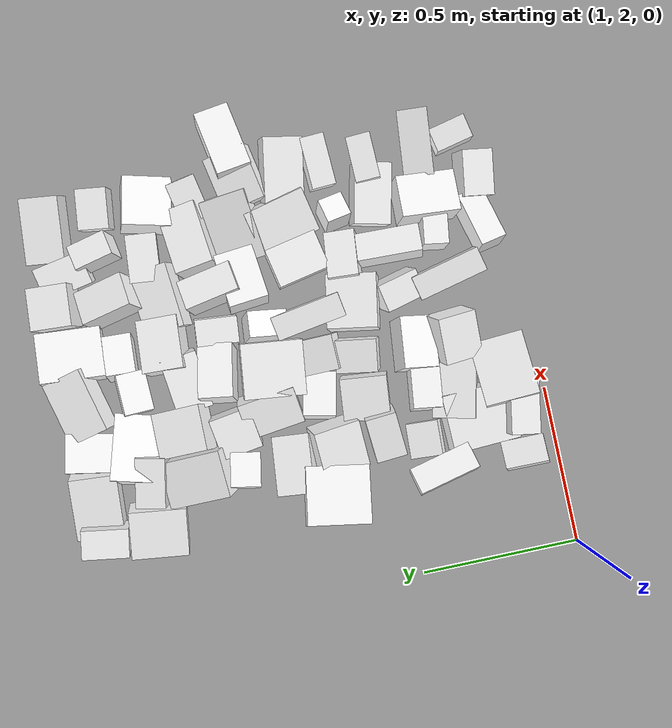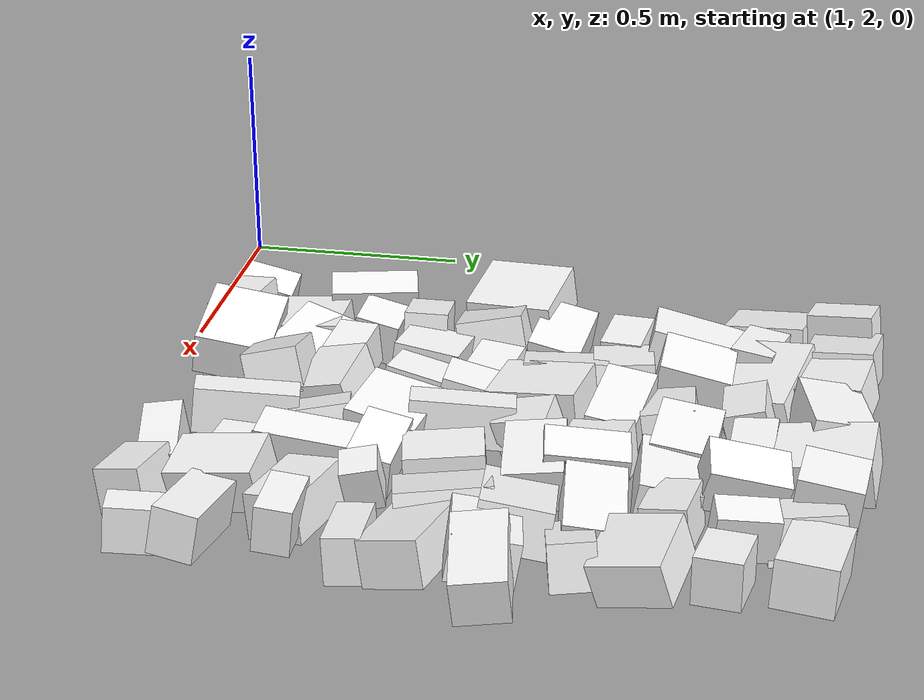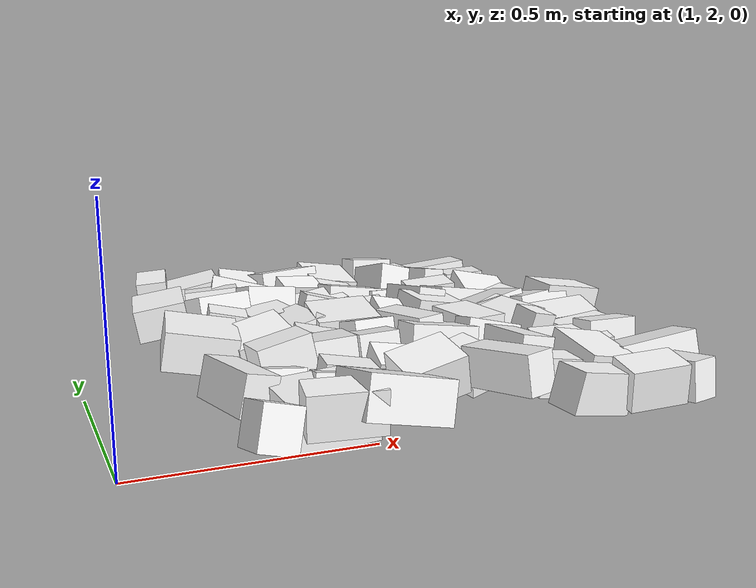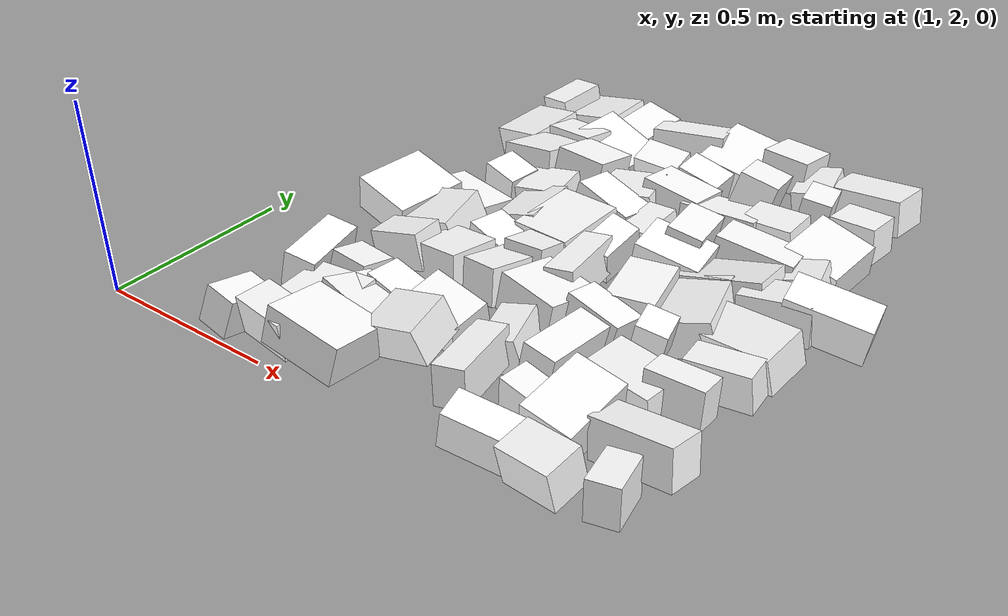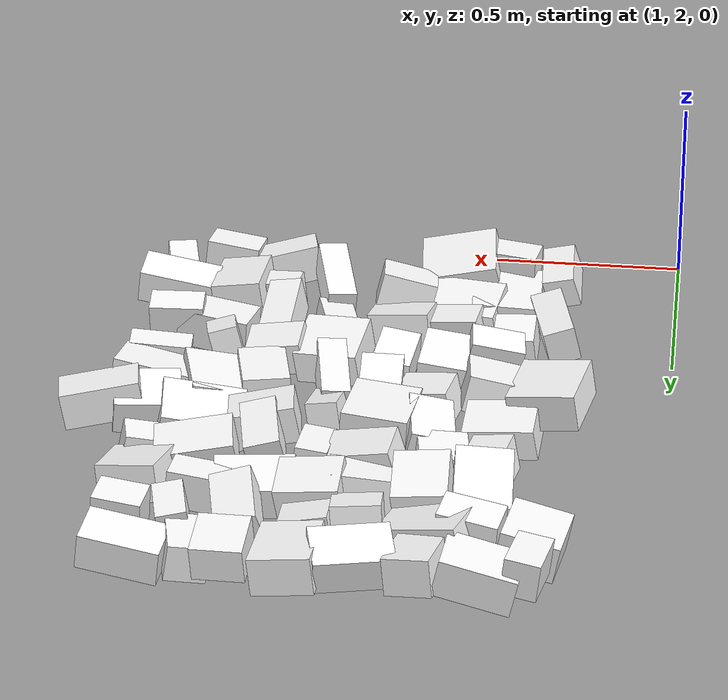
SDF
<sdf version="1.7">
 <world name="default">
  <include><uri>model://sun</uri></include>
  <model name="static_environment">
   <static>true</static>
   <link name="region_602">
    <pose>1.3143529930830047 2.10798580426209 0.02496733199336092 -0.23788961958568355 0.23706101029361798 -0.026906328376021527</pose>
    <collision name="region_602_collision">
     <geometry><box><size>0.086723894463434 0.1339021619477204 0.1</size></box></geometry>
     <surface><friction><ode><mu>1.0</mu><mu2>1.0</mu2></ode></friction></surface>
    </collision>
    <visual name="region_602_visual">
     <geometry><box><size>0.086723894463434 0.1339021619477204 0.1</size></box></geometry>
     <material><ambient>1.0 1.0 1.0 1.0</ambient><diffuse>1.0 1.0 1.0 1.0</diffuse></material>
    </visual>
   </link>
   <link name="region_603">
    <pose>1.4645937225971548 2.097411394733201 0.04912402909399399 0.09038301964085677 -0.01752523511364318 -0.16919919212234452</pose>
    <collision name="region_603_collision">
     <geometry><box><size>0.16918472586889083 0.0926132143927425 0.1</size></box></geometry>
     <surface><friction><ode><mu>1.0</mu><mu2>1.0</mu2></ode></friction></surface>
    </collision>
    <visual name="region_603_visual">
     <geometry><box><size>0.16918472586889083 0.0926132143927425 0.1</size></box></geometry>
     <material><ambient>1.0 1.0 1.0 1.0</ambient><diffuse>1.0 1.0 1.0 1.0</diffuse></material>
    </visual>
   </link>
   <link name="region_604">
    <pose>1.587092569384673 2.123796823683361 0.04971246547814872 -0.17374251782879535 0.2014244224064407 0.03436584116499031</pose>
    <collision name="region_604_collision">
     <geometry><box><size>0.2029740576088566 0.16855377845805458 0.1</size></box></geometry>
     <surface><friction><ode><mu>1.0</mu><mu2>1.0</mu2></ode></friction></surface>
    </collision>
    <visual name="region_604_visual">
     <geometry><box><size>0.2029740576088566 0.16855377845805458 0.1</size></box></geometry>
     <material><ambient>1.0 1.0 1.0 1.0</ambient><diffuse>1.0 1.0 1.0 1.0</diffuse></material>
    </visual>
   </link>
   <link name="region_607">
    <pose>2.0695237140863014 2.096034040735279 0.015921465502781656 0.095740891409206 0.19202154855508013 0.21500186572130858</pose>
    <collision name="region_607_collision">
     <geometry><box><size>0.17749332622786237 0.08345738807720982 0.1</size></box></geometry>
     <surface><friction><ode><mu>1.0</mu><mu2>1.0</mu2></ode></friction></surface>
    </collision>
    <visual name="region_607_visual">
     <geometry><box><size>0.17749332622786237 0.08345738807720982 0.1</size></box></geometry>
     <material><ambient>1.0 1.0 1.0 1.0</ambient><diffuse>1.0 1.0 1.0 1.0</diffuse></material>
    </visual>
   </link>
   <link name="region_608">
    <pose>2.2174133554037008 2.0843425345050828 0.022183066573756134 0.15995687303231632 -0.07999695536176094 -0.1370175415728488</pose>
    <collision name="region_608_collision">
     <geometry><box><size>0.14453122709304111 0.09867787945108614 0.1</size></box></geometry>
     <surface><friction><ode><mu>1.0</mu><mu2>1.0</mu2></ode></friction></surface>
    </collision>
    <visual name="region_608_visual">
     <geometry><box><size>0.14453122709304111 0.09867787945108614 0.1</size></box></geometry>
     <material><ambient>1.0 1.0 1.0 1.0</ambient><diffuse>1.0 1.0 1.0 1.0</diffuse></material>
    </visual>
   </link>
   <link name="region_609">
    <pose>2.35659515418664 2.1286541226583027 0.0035398292321165703 -0.09171750222686942 -0.023258259265477255 0.2113139224327858</pose>
    <collision name="region_609_collision">
     <geometry><box><size>0.0765642604869572 0.11956382684275133 0.1</size></box></geometry>
     <surface><friction><ode><mu>1.0</mu><mu2>1.0</mu2></ode></friction></surface>
    </collision>
    <visual name="region_609_visual">
     <geometry><box><size>0.0765642604869572 0.11956382684275133 0.1</size></box></geometry>
     <material><ambient>1.0 1.0 1.0 1.0</ambient><diffuse>1.0 1.0 1.0 1.0</diffuse></material>
    </visual>
   </link>
   <link name="region_623">
    <pose>1.4600234426269774 2.2277964300716584 0.005274058077741267 0.04518145309298838 -0.06167250563846677 0.03802367119254807</pose>
    <collision name="region_623_collision">
     <geometry><box><size>0.18674985992699442 0.21653331803329728 0.1</size></box></geometry>
     <surface><friction><ode><mu>1.0</mu><mu2>1.0</mu2></ode></friction></surface>
    </collision>
    <visual name="region_623_visual">
     <geometry><box><size>0.18674985992699442 0.21653331803329728 0.1</size></box></geometry>
     <material><ambient>1.0 1.0 1.0 1.0</ambient><diffuse>1.0 1.0 1.0 1.0</diffuse></material>
    </visual>
   </link>
   <link name="region_624">
    <pose>1.5703644933242225 2.2788946518633217 0.011345727443911258 -0.22921941343310626 0.0675936499980957 -0.23348834809650226</pose>
    <collision name="region_624_collision">
     <geometry><box><size>0.21236594375697418 0.13424560840203897 0.1</size></box></geometry>
     <surface><friction><ode><mu>1.0</mu><mu2>1.0</mu2></ode></friction></surface>
    </collision>
    <visual name="region_624_visual">
     <geometry><box><size>0.21236594375697418 0.13424560840203897 0.1</size></box></geometry>
     <material><ambient>1.0 1.0 1.0 1.0</ambient><diffuse>1.0 1.0 1.0 1.0</diffuse></material>
    </visual>
   </link>
   <link name="region_625">
    <pose>1.7283618011784903 2.255405741614464 0.0499754252169395 0.23150983075776183 -0.2384701267287327 0.014936623894739431</pose>
    <collision name="region_625_collision">
     <geometry><box><size>0.14828915977501894 0.1256152336093527 0.1</size></box></geometry>
     <surface><friction><ode><mu>1.0</mu><mu2>1.0</mu2></ode></friction></surface>
    </collision>
    <visual name="region_625_visual">
     <geometry><box><size>0.14828915977501894 0.1256152336093527 0.1</size></box></geometry>
     <material><ambient>1.0 1.0 1.0 1.0</ambient><diffuse>1.0 1.0 1.0 1.0</diffuse></material>
    </visual>
   </link>
   <link name="region_626">
    <pose>1.9233811798272384 2.232397662406858 0.04546616709158715 -0.11582847557283044 -0.06994923179833806 0.24037190409286402</pose>
    <collision name="region_626_collision">
     <geometry><box><size>0.07717132412795666 0.22243913095050838 0.1</size></box></geometry>
     <surface><friction><ode><mu>1.0</mu><mu2>1.0</mu2></ode></friction></surface>
    </collision>
    <visual name="region_626_visual">
     <geometry><box><size>0.07717132412795666 0.22243913095050838 0.1</size></box></geometry>
     <material><ambient>1.0 1.0 1.0 1.0</ambient><diffuse>1.0 1.0 1.0 1.0</diffuse></material>
    </visual>
   </link>
   <link name="region_627">
    <pose>2.0667821774352033 2.244846880296875 0.009673656145635486 0.03573477229511368 0.10537960164643917 -0.15665633704739396</pose>
    <collision name="region_627_collision">
     <geometry><box><size>0.10335498510022983 0.07912936034270254 0.1</size></box></geometry>
     <surface><friction><ode><mu>1.0</mu><mu2>1.0</mu2></ode></friction></surface>
    </collision>
    <visual name="region_627_visual">
     <geometry><box><size>0.10335498510022983 0.07912936034270254 0.1</size></box></geometry>
     <material><ambient>1.0 1.0 1.0 1.0</ambient><diffuse>1.0 1.0 1.0 1.0</diffuse></material>
    </visual>
   </link>
   <link name="region_628">
    <pose>2.1746676131185723 2.2519778101091217 0.02750059011983226 0.1356110483469991 0.15929310447262873 -0.04012678356468602</pose>
    <collision name="region_628_collision">
     <geometry><box><size>0.13334763889579823 0.1891318839042098 0.1</size></box></geometry>
     <surface><friction><ode><mu>1.0</mu><mu2>1.0</mu2></ode></friction></surface>
    </collision>
    <visual name="region_628_visual">
     <geometry><box><size>0.13334763889579823 0.1891318839042098 0.1</size></box></geometry>
     <material><ambient>1.0 1.0 1.0 1.0</ambient><diffuse>1.0 1.0 1.0 1.0</diffuse></material>
    </visual>
   </link>
   <link name="region_629">
    <pose>2.350671750558049 2.244659696027526 0.026897671674542337 -0.15021741841432784 -0.1387005551535065 -0.0753169357927555</pose>
    <collision name="region_629_collision">
     <geometry><box><size>0.2087821261390897 0.09527432023995436 0.1</size></box></geometry>
     <surface><friction><ode><mu>1.0</mu><mu2>1.0</mu2></ode></friction></surface>
    </collision>
    <visual name="region_629_visual">
     <geometry><box><size>0.2087821261390897 0.09527432023995436 0.1</size></box></geometry>
     <material><ambient>1.0 1.0 1.0 1.0</ambient><diffuse>1.0 1.0 1.0 1.0</diffuse></material>
    </visual>
   </link>
   <link name="region_642">
    <pose>1.3174664044132984 2.3725804348523267 0.03244933965234272 -0.003039795011237967 0.23032373334636874 0.23483845224082944</pose>
    <collision name="region_642_collision">
     <geometry><box><size>0.08515876372812148 0.20066687292897822 0.1</size></box></geometry>
     <surface><friction><ode><mu>1.0</mu><mu2>1.0</mu2></ode></friction></surface>
    </collision>
    <visual name="region_642_visual">
     <geometry><box><size>0.08515876372812148 0.20066687292897822 0.1</size></box></geometry>
     <material><ambient>1.0 1.0 1.0 1.0</ambient><diffuse>1.0 1.0 1.0 1.0</diffuse></material>
    </visual>
   </link>
   <link name="region_643">
    <pose>1.42077324003048 2.4071686409813373 0.0038961210840954444 -0.22424612089459717 0.07293676148431916 -0.05029556373433813</pose>
    <collision name="region_643_collision">
     <geometry><box><size>0.11067459371309829 0.10157407020688614 0.1</size></box></geometry>
     <surface><friction><ode><mu>1.0</mu><mu2>1.0</mu2></ode></friction></surface>
    </collision>
    <visual name="region_643_visual">
     <geometry><box><size>0.11067459371309829 0.10157407020688614 0.1</size></box></geometry>
     <material><ambient>1.0 1.0 1.0 1.0</ambient><diffuse>1.0 1.0 1.0 1.0</diffuse></material>
    </visual>
   </link>
   <link name="region_644">
    <pose>1.585266996235787 2.3765225379726918 0.010154423140943659 0.012806156578442585 0.15798803355348695 -0.14073606140338257</pose>
    <collision name="region_644_collision">
     <geometry><box><size>0.14411451406173525 0.09307348839362574 0.1</size></box></geometry>
     <surface><friction><ode><mu>1.0</mu><mu2>1.0</mu2></ode></friction></surface>
    </collision>
    <visual name="region_644_visual">
     <geometry><box><size>0.14411451406173525 0.09307348839362574 0.1</size></box></geometry>
     <material><ambient>1.0 1.0 1.0 1.0</ambient><diffuse>1.0 1.0 1.0 1.0</diffuse></material>
    </visual>
   </link>
   <link name="region_645">
    <pose>1.7269369695472547 2.3804817218383976 0.01407113426145622 0.2427966067166903 0.13512546164591172 -0.12033005948299336</pose>
    <collision name="region_645_collision">
     <geometry><box><size>0.1651872669137714 0.1141411296268407 0.1</size></box></geometry>
     <surface><friction><ode><mu>1.0</mu><mu2>1.0</mu2></ode></friction></surface>
    </collision>
    <visual name="region_645_visual">
     <geometry><box><size>0.1651872669137714 0.1141411296268407 0.1</size></box></geometry>
     <material><ambient>1.0 1.0 1.0 1.0</ambient><diffuse>1.0 1.0 1.0 1.0</diffuse></material>
    </visual>
   </link>
   <link name="region_646">
    <pose>1.9082073095073921 2.394887787088176 0.01175133476950111 0.12339919459653786 -0.20544335097657573 0.21720625447581654</pose>
    <collision name="region_646_collision">
     <geometry><box><size>0.09001982028151964 0.13358799579513947 0.1</size></box></geometry>
     <surface><friction><ode><mu>1.0</mu><mu2>1.0</mu2></ode></friction></surface>
    </collision>
    <visual name="region_646_visual">
     <geometry><box><size>0.09001982028151964 0.13358799579513947 0.1</size></box></geometry>
     <material><ambient>1.0 1.0 1.0 1.0</ambient><diffuse>1.0 1.0 1.0 1.0</diffuse></material>
    </visual>
   </link>
   <link name="region_647">
    <pose>2.048772132888746 2.4040651178079 0.03422124570360553 -0.08794632622545062 0.16351725450456117 -0.05338631998854776</pose>
    <collision name="region_647_collision">
     <geometry><box><size>0.08709115709806353 0.21614166682891814 0.1</size></box></geometry>
     <surface><friction><ode><mu>1.0</mu><mu2>1.0</mu2></ode></friction></surface>
    </collision>
    <visual name="region_647_visual">
     <geometry><box><size>0.08709115709806353 0.21614166682891814 0.1</size></box></geometry>
     <material><ambient>1.0 1.0 1.0 1.0</ambient><diffuse>1.0 1.0 1.0 1.0</diffuse></material>
    </visual>
   </link>
   <link name="region_648">
    <pose>2.2228908336440423 2.4180756621457054 0.01078647115048741 0.11317626796271246 -0.04050861062842126 -0.2200087810113882</pose>
    <collision name="region_648_collision">
     <geometry><box><size>0.19466537238057519 0.11813605146870075 0.1</size></box></geometry>
     <surface><friction><ode><mu>1.0</mu><mu2>1.0</mu2></ode></friction></surface>
    </collision>
    <visual name="region_648_visual">
     <geometry><box><size>0.19466537238057519 0.11813605146870075 0.1</size></box></geometry>
     <material><ambient>1.0 1.0 1.0 1.0</ambient><diffuse>1.0 1.0 1.0 1.0</diffuse></material>
    </visual>
   </link>
   <link name="region_649">
    <pose>2.331909031631252 2.4187543520339214 0.038962711543759285 -0.11137660495114554 0.006415821342074468 0.025836209355691697</pose>
    <collision name="region_649_collision">
     <geometry><box><size>0.1448756599503218 0.07742169342774953 0.1</size></box></geometry>
     <surface><friction><ode><mu>1.0</mu><mu2>1.0</mu2></ode></friction></surface>
    </collision>
    <visual name="region_649_visual">
     <geometry><box><size>0.1448756599503218 0.07742169342774953 0.1</size></box></geometry>
     <material><ambient>1.0 1.0 1.0 1.0</ambient><diffuse>1.0 1.0 1.0 1.0</diffuse></material>
    </visual>
   </link>
   <link name="region_663">
    <pose>1.4696052407768527 2.534544782767726 0.04232349508911307 -0.032987733629840976 -0.208707993830949 0.08378166645857194</pose>
    <collision name="region_663_collision">
     <geometry><box><size>0.14310180446693474 0.09788475142690135 0.1</size></box></geometry>
     <surface><friction><ode><mu>1.0</mu><mu2>1.0</mu2></ode></friction></surface>
    </collision>
    <visual name="region_663_visual">
     <geometry><box><size>0.14310180446693474 0.09788475142690135 0.1</size></box></geometry>
     <material><ambient>1.0 1.0 1.0 1.0</ambient><diffuse>1.0 1.0 1.0 1.0</diffuse></material>
    </visual>
   </link>
   <link name="region_664">
    <pose>1.5950414348366588 2.5681954384393584 0.02559978951803677 -0.1171173845227817 -0.08456585321787402 -0.09006968437760532</pose>
    <collision name="region_664_collision">
     <geometry><box><size>0.136256660732518 0.14735986445211582 0.1</size></box></geometry>
     <surface><friction><ode><mu>1.0</mu><mu2>1.0</mu2></ode></friction></surface>
    </collision>
    <visual name="region_664_visual">
     <geometry><box><size>0.136256660732518 0.14735986445211582 0.1</size></box></geometry>
     <material><ambient>1.0 1.0 1.0 1.0</ambient><diffuse>1.0 1.0 1.0 1.0</diffuse></material>
    </visual>
   </link>
   <link name="region_665">
    <pose>1.730510681396158 2.565255428287132 0.02690682398958938 -0.1678461733137775 -0.08460996980515484 -0.14149700012071087</pose>
    <collision name="region_665_collision">
     <geometry><box><size>0.10386604887862368 0.13109493573133418 0.1</size></box></geometry>
     <surface><friction><ode><mu>1.0</mu><mu2>1.0</mu2></ode></friction></surface>
    </collision>
    <visual name="region_665_visual">
     <geometry><box><size>0.10386604887862368 0.13109493573133418 0.1</size></box></geometry>
     <material><ambient>1.0 1.0 1.0 1.0</ambient><diffuse>1.0 1.0 1.0 1.0</diffuse></material>
    </visual>
   </link>
   <link name="region_666">
    <pose>1.896415927758869 2.5456465840006075 0.03445310274407008 -0.1575869815936991 0.08996931444552764 -0.18276394051536965</pose>
    <collision name="region_666_collision">
     <geometry><box><size>0.17262391614225991 0.15989523985767373 0.1</size></box></geometry>
     <surface><friction><ode><mu>1.0</mu><mu2>1.0</mu2></ode></friction></surface>
    </collision>
    <visual name="region_666_visual">
     <geometry><box><size>0.17262391614225991 0.15989523985767373 0.1</size></box></geometry>
     <material><ambient>1.0 1.0 1.0 1.0</ambient><diffuse>1.0 1.0 1.0 1.0</diffuse></material>
    </visual>
   </link>
   <link name="region_667">
    <pose>2.042819648653981 2.5458389221278654 0.029452910217971036 -0.17875710460485617 0.20783169068785529 -0.11137265509208405</pose>
    <collision name="region_667_collision">
     <geometry><box><size>0.14888321037254232 0.09784136209261589 0.1</size></box></geometry>
     <surface><friction><ode><mu>1.0</mu><mu2>1.0</mu2></ode></friction></surface>
    </collision>
    <visual name="region_667_visual">
     <geometry><box><size>0.14888321037254232 0.09784136209261589 0.1</size></box></geometry>
     <material><ambient>1.0 1.0 1.0 1.0</ambient><diffuse>1.0 1.0 1.0 1.0</diffuse></material>
    </visual>
   </link>
   <link name="region_668">
    <pose>2.185639436869777 2.5484188589840775 0.04816407387048617 0.15214157858641508 0.21371732535255883 0.22385572139462862</pose>
    <collision name="region_668_collision">
     <geometry><box><size>0.07835244203209839 0.07867453779901919 0.1</size></box></geometry>
     <surface><friction><ode><mu>1.0</mu><mu2>1.0</mu2></ode></friction></surface>
    </collision>
    <visual name="region_668_visual">
     <geometry><box><size>0.07835244203209839 0.07867453779901919 0.1</size></box></geometry>
     <material><ambient>1.0 1.0 1.0 1.0</ambient><diffuse>1.0 1.0 1.0 1.0</diffuse></material>
    </visual>
   </link>
   <link name="region_669">
    <pose>2.3605881775019206 2.564287792739595 0.002783676114178041 0.054436277996396665 -0.08666295139622104 0.05155599077869538</pose>
    <collision name="region_669_collision">
     <geometry><box><size>0.1650235019013615 0.07758229278361405 0.1</size></box></geometry>
     <surface><friction><ode><mu>1.0</mu><mu2>1.0</mu2></ode></friction></surface>
    </collision>
    <visual name="region_669_visual">
     <geometry><box><size>0.1650235019013615 0.07758229278361405 0.1</size></box></geometry>
     <material><ambient>1.0 1.0 1.0 1.0</ambient><diffuse>1.0 1.0 1.0 1.0</diffuse></material>
    </visual>
   </link>
   <link name="region_682">
    <pose>1.309691060833698 2.7224063056841703 0.04742041818681457 0.056505940852751846 0.1694198879536647 -0.1702145771579825</pose>
    <collision name="region_682_collision">
     <geometry><box><size>0.1838266419605566 0.2012826838375013 0.1</size></box></geometry>
     <surface><friction><ode><mu>1.0</mu><mu2>1.0</mu2></ode></friction></surface>
    </collision>
    <visual name="region_682_visual">
     <geometry><box><size>0.1838266419605566 0.2012826838375013 0.1</size></box></geometry>
     <material><ambient>1.0 1.0 1.0 1.0</ambient><diffuse>1.0 1.0 1.0 1.0</diffuse></material>
    </visual>
   </link>
   <link name="region_683">
    <pose>1.460182263853258 2.68714978755599 0.0341091942332441 0.18712511660354308 -0.23327573350817654 0.05149566082053786</pose>
    <collision name="region_683_collision">
     <geometry><box><size>0.15456354021199564 0.15013109096392785 0.1</size></box></geometry>
     <surface><friction><ode><mu>1.0</mu><mu2>1.0</mu2></ode></friction></surface>
    </collision>
    <visual name="region_683_visual">
     <geometry><box><size>0.15456354021199564 0.15013109096392785 0.1</size></box></geometry>
     <material><ambient>1.0 1.0 1.0 1.0</ambient><diffuse>1.0 1.0 1.0 1.0</diffuse></material>
    </visual>
   </link>
   <link name="region_684">
    <pose>1.6284418366044262 2.711407798067886 0.006135762124407396 -0.014895747113848168 0.1931162095912472 -0.2228581068695366</pose>
    <collision name="region_684_collision">
     <geometry><box><size>0.1419198315460838 0.10416370541356289 0.1</size></box></geometry>
     <surface><friction><ode><mu>1.0</mu><mu2>1.0</mu2></ode></friction></surface>
    </collision>
    <visual name="region_684_visual">
     <geometry><box><size>0.1419198315460838 0.10416370541356289 0.1</size></box></geometry>
     <material><ambient>1.0 1.0 1.0 1.0</ambient><diffuse>1.0 1.0 1.0 1.0</diffuse></material>
    </visual>
   </link>
   <link name="region_685">
    <pose>1.7568748213479237 2.7034051995833908 0.023965901885867315 -0.2381112555627199 -0.023516576395760547 0.02205343164945972</pose>
    <collision name="region_685_collision">
     <geometry><box><size>0.11153765889865792 0.163445667059986 0.1</size></box></geometry>
     <surface><friction><ode><mu>1.0</mu><mu2>1.0</mu2></ode></friction></surface>
    </collision>
    <visual name="region_685_visual">
     <geometry><box><size>0.11153765889865792 0.163445667059986 0.1</size></box></geometry>
     <material><ambient>1.0 1.0 1.0 1.0</ambient><diffuse>1.0 1.0 1.0 1.0</diffuse></material>
    </visual>
   </link>
   <link name="region_686">
    <pose>1.8849094229187386 2.691603575944664 0.03848103339782527 -0.08134957897801037 -0.07942698928212183 0.16416790217625254</pose>
    <collision name="region_686_collision">
     <geometry><box><size>0.07659960688748235 0.22474693963739525 0.1</size></box></geometry>
     <surface><friction><ode><mu>1.0</mu><mu2>1.0</mu2></ode></friction></surface>
    </collision>
    <visual name="region_686_visual">
     <geometry><box><size>0.07659960688748235 0.22474693963739525 0.1</size></box></geometry>
     <material><ambient>1.0 1.0 1.0 1.0</ambient><diffuse>1.0 1.0 1.0 1.0</diffuse></material>
    </visual>
   </link>
   <link name="region_687">
    <pose>2.0660358006562696 2.692260490169683 0.027755124811385097 0.046462898333604785 -0.00784472017490001 0.20110084158370573</pose>
    <collision name="region_687_collision">
     <geometry><box><size>0.1251316713293881 0.16814371091625088 0.1</size></box></geometry>
     <surface><friction><ode><mu>1.0</mu><mu2>1.0</mu2></ode></friction></surface>
    </collision>
    <visual name="region_687_visual">
     <geometry><box><size>0.1251316713293881 0.16814371091625088 0.1</size></box></geometry>
     <material><ambient>1.0 1.0 1.0 1.0</ambient><diffuse>1.0 1.0 1.0 1.0</diffuse></material>
    </visual>
   </link>
   <link name="region_688">
    <pose>2.2014723236742757 2.7178594442779245 0.013979950971639083 0.04890830067141366 -0.24467218775949318 0.22344446839523946</pose>
    <collision name="region_688_collision">
     <geometry><box><size>0.14325564510289565 0.20071720479619318 0.1</size></box></geometry>
     <surface><friction><ode><mu>1.0</mu><mu2>1.0</mu2></ode></friction></surface>
    </collision>
    <visual name="region_688_visual">
     <geometry><box><size>0.14325564510289565 0.20071720479619318 0.1</size></box></geometry>
     <material><ambient>1.0 1.0 1.0 1.0</ambient><diffuse>1.0 1.0 1.0 1.0</diffuse></material>
    </visual>
   </link>
   <link name="region_689">
    <pose>2.3532290325070955 2.682009680313263 0.011833894217509272 0.18572736864822897 -0.11090003383661778 -0.17297204201038324</pose>
    <collision name="region_689_collision">
     <geometry><box><size>0.21339967732118195 0.12634803702589156 0.1</size></box></geometry>
     <surface><friction><ode><mu>1.0</mu><mu2>1.0</mu2></ode></friction></surface>
    </collision>
    <visual name="region_689_visual">
     <geometry><box><size>0.21339967732118195 0.12634803702589156 0.1</size></box></geometry>
     <material><ambient>1.0 1.0 1.0 1.0</ambient><diffuse>1.0 1.0 1.0 1.0</diffuse></material>
    </visual>
   </link>
   <link name="region_703">
    <pose>1.4268861331454188 2.831039765134339 0.0044374265421601 -0.19199607893076942 0.1210143721438921 -0.09574067385575658</pose>
    <collision name="region_703_collision">
     <geometry><box><size>0.18887123438030895 0.12031872149837258 0.1</size></box></geometry>
     <surface><friction><ode><mu>1.0</mu><mu2>1.0</mu2></ode></friction></surface>
    </collision>
    <visual name="region_703_visual">
     <geometry><box><size>0.18887123438030895 0.12031872149837258 0.1</size></box></geometry>
     <material><ambient>1.0 1.0 1.0 1.0</ambient><diffuse>1.0 1.0 1.0 1.0</diffuse></material>
    </visual>
   </link>
   <link name="region_704">
    <pose>1.617324433054312 2.873340166072978 0.012054062393066124 -0.011652353412267724 -0.23530749740273182 0.1282282720299407</pose>
    <collision name="region_704_collision">
     <geometry><box><size>0.11781139502868884 0.18575936003575874 0.1</size></box></geometry>
     <surface><friction><ode><mu>1.0</mu><mu2>1.0</mu2></ode></friction></surface>
    </collision>
    <visual name="region_704_visual">
     <geometry><box><size>0.11781139502868884 0.18575936003575874 0.1</size></box></geometry>
     <material><ambient>1.0 1.0 1.0 1.0</ambient><diffuse>1.0 1.0 1.0 1.0</diffuse></material>
    </visual>
   </link>
   <link name="region_705">
    <pose>1.744138431909417 2.8401431879848 0.02873789898066107 0.09785237822874732 -0.04309117150117914 -0.12425545501157886</pose>
    <collision name="region_705_collision">
     <geometry><box><size>0.17538005377421118 0.19675497910294712 0.1</size></box></geometry>
     <surface><friction><ode><mu>1.0</mu><mu2>1.0</mu2></ode></friction></surface>
    </collision>
    <visual name="region_705_visual">
     <geometry><box><size>0.17538005377421118 0.19675497910294712 0.1</size></box></geometry>
     <material><ambient>1.0 1.0 1.0 1.0</ambient><diffuse>1.0 1.0 1.0 1.0</diffuse></material>
    </visual>
   </link>
   <link name="region_706">
    <pose>1.8801810650492423 2.8351802898031075 0.02812658514610471 0.24861206126157814 0.18758453731724872 -0.08382953887192485</pose>
    <collision name="region_706_collision">
     <geometry><box><size>0.08476342565052225 0.12552670415046677 0.1</size></box></geometry>
     <surface><friction><ode><mu>1.0</mu><mu2>1.0</mu2></ode></friction></surface>
    </collision>
    <visual name="region_706_visual">
     <geometry><box><size>0.08476342565052225 0.12552670415046677 0.1</size></box></geometry>
     <material><ambient>1.0 1.0 1.0 1.0</ambient><diffuse>1.0 1.0 1.0 1.0</diffuse></material>
    </visual>
   </link>
   <link name="region_707">
    <pose>2.0418987826040977 2.8773879663857813 0.03148126652008868 0.09064083214219149 0.18183572324832853 0.11561555088288822</pose>
    <collision name="region_707_collision">
     <geometry><box><size>0.17361020254284515 0.1273255044764846 0.1</size></box></geometry>
     <surface><friction><ode><mu>1.0</mu><mu2>1.0</mu2></ode></friction></surface>
    </collision>
    <visual name="region_707_visual">
     <geometry><box><size>0.17361020254284515 0.1273255044764846 0.1</size></box></geometry>
     <material><ambient>1.0 1.0 1.0 1.0</ambient><diffuse>1.0 1.0 1.0 1.0</diffuse></material>
    </visual>
   </link>
   <link name="region_708">
    <pose>2.2101220183882893 2.8631827321808077 0.015579256906652544 -0.18168560005681667 -0.19793560204198157 0.12040297911783843</pose>
    <collision name="region_708_collision">
     <geometry><box><size>0.21971638210706768 0.15066803202587142 0.1</size></box></geometry>
     <surface><friction><ode><mu>1.0</mu><mu2>1.0</mu2></ode></friction></surface>
    </collision>
    <visual name="region_708_visual">
     <geometry><box><size>0.21971638210706768 0.15066803202587142 0.1</size></box></geometry>
     <material><ambient>1.0 1.0 1.0 1.0</ambient><diffuse>1.0 1.0 1.0 1.0</diffuse></material>
    </visual>
   </link>
   <link name="region_709">
    <pose>2.3581938256128234 2.8255277401500214 0.03212625555658172 -0.18397709727504546 -0.069654230347579 0.1862787211058871</pose>
    <collision name="region_709_collision">
     <geometry><box><size>0.1779685319927215 0.13764247144211952 0.1</size></box></geometry>
     <surface><friction><ode><mu>1.0</mu><mu2>1.0</mu2></ode></friction></surface>
    </collision>
    <visual name="region_709_visual">
     <geometry><box><size>0.1779685319927215 0.13764247144211952 0.1</size></box></geometry>
     <material><ambient>1.0 1.0 1.0 1.0</ambient><diffuse>1.0 1.0 1.0 1.0</diffuse></material>
    </visual>
   </link>
   <link name="region_710">
    <pose>2.4720789291643754 2.8436973619759804 0.048535293526963036 0.08955452287191662 0.15885383841016165 0.17120877290341002</pose>
    <collision name="region_710_collision">
     <geometry><box><size>0.21051606068603881 0.11141600809802658 0.1</size></box></geometry>
     <surface><friction><ode><mu>1.0</mu><mu2>1.0</mu2></ode></friction></surface>
    </collision>
    <visual name="region_710_visual">
     <geometry><box><size>0.21051606068603881 0.11141600809802658 0.1</size></box></geometry>
     <material><ambient>1.0 1.0 1.0 1.0</ambient><diffuse>1.0 1.0 1.0 1.0</diffuse></material>
    </visual>
   </link>
   <link name="region_723">
    <pose>1.443373016513653 2.9918862539539917 0.01728413727102272 0.05160190533941961 0.1951689356312582 -0.17955825144205134</pose>
    <collision name="region_723_collision">
     <geometry><box><size>0.10864000511715916 0.09579839884789658 0.1</size></box></geometry>
     <surface><friction><ode><mu>1.0</mu><mu2>1.0</mu2></ode></friction></surface>
    </collision>
    <visual name="region_723_visual">
     <geometry><box><size>0.10864000511715916 0.09579839884789658 0.1</size></box></geometry>
     <material><ambient>1.0 1.0 1.0 1.0</ambient><diffuse>1.0 1.0 1.0 1.0</diffuse></material>
    </visual>
   </link>
   <link name="region_724">
    <pose>1.5725294428045569 2.9963218724428513 0.009921054351777776 0.021360486095597986 -0.11313920524591442 0.1440481535006784</pose>
    <collision name="region_724_collision">
     <geometry><box><size>0.1316782028865229 0.13334192100901296 0.1</size></box></geometry>
     <surface><friction><ode><mu>1.0</mu><mu2>1.0</mu2></ode></friction></surface>
    </collision>
    <visual name="region_724_visual">
     <geometry><box><size>0.1316782028865229 0.13334192100901296 0.1</size></box></geometry>
     <material><ambient>1.0 1.0 1.0 1.0</ambient><diffuse>1.0 1.0 1.0 1.0</diffuse></material>
    </visual>
   </link>
   <link name="region_725">
    <pose>1.7659681357323929 3.013951048183665 0.022677071022891238 -0.09489127424091298 0.24571694264845906 -0.16869228369487038</pose>
    <collision name="region_725_collision">
     <geometry><box><size>0.17519138719016555 0.1111644902939429 0.1</size></box></geometry>
     <surface><friction><ode><mu>1.0</mu><mu2>1.0</mu2></ode></friction></surface>
    </collision>
    <visual name="region_725_visual">
     <geometry><box><size>0.17519138719016555 0.1111644902939429 0.1</size></box></geometry>
     <material><ambient>1.0 1.0 1.0 1.0</ambient><diffuse>1.0 1.0 1.0 1.0</diffuse></material>
    </visual>
   </link>
   <link name="region_726">
    <pose>1.9012811685357822 2.9909166079889213 0.0030427323591054878 0.11318606045318547 -0.08429968116212083 -0.09716095236102412</pose>
    <collision name="region_726_collision">
     <geometry><box><size>0.08473252543093251 0.1350270328969755 0.1</size></box></geometry>
     <surface><friction><ode><mu>1.0</mu><mu2>1.0</mu2></ode></friction></surface>
    </collision>
    <visual name="region_726_visual">
     <geometry><box><size>0.08473252543093251 0.1350270328969755 0.1</size></box></geometry>
     <material><ambient>1.0 1.0 1.0 1.0</ambient><diffuse>1.0 1.0 1.0 1.0</diffuse></material>
    </visual>
   </link>
   <link name="region_727">
    <pose>2.033417141781344 2.9757561690315995 0.043583258124832186 -0.11307900784483188 0.20840995353699449 0.15332639837387219</pose>
    <collision name="region_727_collision">
     <geometry><box><size>0.09509074482598952 0.1773804990077613 0.1</size></box></geometry>
     <surface><friction><ode><mu>1.0</mu><mu2>1.0</mu2></ode></friction></surface>
    </collision>
    <visual name="region_727_visual">
     <geometry><box><size>0.09509074482598952 0.1773804990077613 0.1</size></box></geometry>
     <material><ambient>1.0 1.0 1.0 1.0</ambient><diffuse>1.0 1.0 1.0 1.0</diffuse></material>
    </visual>
   </link>
   <link name="region_728">
    <pose>2.2016291832050863 3.015522190553375 0.01912206212263476 -0.13405645309189523 0.155707366247001 0.1161509480570303</pose>
    <collision name="region_728_collision">
     <geometry><box><size>0.20530159969009992 0.12581523641172435 0.1</size></box></geometry>
     <surface><friction><ode><mu>1.0</mu><mu2>1.0</mu2></ode></friction></surface>
    </collision>
    <visual name="region_728_visual">
     <geometry><box><size>0.20530159969009992 0.12581523641172435 0.1</size></box></geometry>
     <material><ambient>1.0 1.0 1.0 1.0</ambient><diffuse>1.0 1.0 1.0 1.0</diffuse></material>
    </visual>
   </link>
   <link name="region_729">
    <pose>2.3305239725242455 2.993742739478483 0.0011384532195153063 0.06201355195987163 -0.21533324877926546 0.18812072405113694</pose>
    <collision name="region_729_collision">
     <geometry><box><size>0.13861890257224174 0.0960372275920972 0.1</size></box></geometry>
     <surface><friction><ode><mu>1.0</mu><mu2>1.0</mu2></ode></friction></surface>
    </collision>
    <visual name="region_729_visual">
     <geometry><box><size>0.13861890257224174 0.0960372275920972 0.1</size></box></geometry>
     <material><ambient>1.0 1.0 1.0 1.0</ambient><diffuse>1.0 1.0 1.0 1.0</diffuse></material>
    </visual>
   </link>
   <link name="region_743">
    <pose>1.457125382188936 3.1395205708832084 0.030091516385797115 -0.24101536167389775 -0.06292800724993941 0.05317972996940451</pose>
    <collision name="region_743_collision">
     <geometry><box><size>0.1495758697520982 0.2016661739797373 0.1</size></box></geometry>
     <surface><friction><ode><mu>1.0</mu><mu2>1.0</mu2></ode></friction></surface>
    </collision>
    <visual name="region_743_visual">
     <geometry><box><size>0.1495758697520982 0.2016661739797373 0.1</size></box></geometry>
     <material><ambient>1.0 1.0 1.0 1.0</ambient><diffuse>1.0 1.0 1.0 1.0</diffuse></material>
    </visual>
   </link>
   <link name="region_744">
    <pose>1.6079854217774754 3.154599912811368 0.04036495322894771 -0.22152070609673363 0.09030090934727941 0.0045166190603011525</pose>
    <collision name="region_744_collision">
     <geometry><box><size>0.14521718814167467 0.15950310742119683 0.1</size></box></geometry>
     <surface><friction><ode><mu>1.0</mu><mu2>1.0</mu2></ode></friction></surface>
    </collision>
    <visual name="region_744_visual">
     <geometry><box><size>0.14521718814167467 0.15950310742119683 0.1</size></box></geometry>
     <material><ambient>1.0 1.0 1.0 1.0</ambient><diffuse>1.0 1.0 1.0 1.0</diffuse></material>
    </visual>
   </link>
   <link name="region_745">
    <pose>1.7609350590576813 3.121441382307389 0.007881405707828599 0.14228479023754387 -0.14307304234167378 0.09726363129235066</pose>
    <collision name="region_745_collision">
     <geometry><box><size>0.1831687304821196 0.11696181886587012 0.1</size></box></geometry>
     <surface><friction><ode><mu>1.0</mu><mu2>1.0</mu2></ode></friction></surface>
    </collision>
    <visual name="region_745_visual">
     <geometry><box><size>0.1831687304821196 0.11696181886587012 0.1</size></box></geometry>
     <material><ambient>1.0 1.0 1.0 1.0</ambient><diffuse>1.0 1.0 1.0 1.0</diffuse></material>
    </visual>
   </link>
   <link name="region_746">
    <pose>1.8885829961340783 3.1642617978626353 0.02120136489827448 -0.13495422679761904 0.12886120859775468 -0.05301002430129853</pose>
    <collision name="region_746_collision">
     <geometry><box><size>0.1692180283577332 0.13432457328536598 0.1</size></box></geometry>
     <surface><friction><ode><mu>1.0</mu><mu2>1.0</mu2></ode></friction></surface>
    </collision>
    <visual name="region_746_visual">
     <geometry><box><size>0.1692180283577332 0.13432457328536598 0.1</size></box></geometry>
     <material><ambient>1.0 1.0 1.0 1.0</ambient><diffuse>1.0 1.0 1.0 1.0</diffuse></material>
    </visual>
   </link>
   <link name="region_747">
    <pose>2.034879312913369 3.1462507312867394 0.005447114882210347 -0.17997039388051594 0.01079764287703755 0.08781141465209802</pose>
    <collision name="region_747_collision">
     <geometry><box><size>0.20704896208905432 0.13059092200293262 0.1</size></box></geometry>
     <surface><friction><ode><mu>1.0</mu><mu2>1.0</mu2></ode></friction></surface>
    </collision>
    <visual name="region_747_visual">
     <geometry><box><size>0.20704896208905432 0.13059092200293262 0.1</size></box></geometry>
     <material><ambient>1.0 1.0 1.0 1.0</ambient><diffuse>1.0 1.0 1.0 1.0</diffuse></material>
    </visual>
   </link>
   <link name="region_748">
    <pose>2.1755477485278663 3.1697283422536997 0.016352953850910148 0.10998398926258918 -0.08477919839060954 -0.10421303684646699</pose>
    <collision name="region_748_collision">
     <geometry><box><size>0.15152641585333318 0.09743872525553965 0.1</size></box></geometry>
     <surface><friction><ode><mu>1.0</mu><mu2>1.0</mu2></ode></friction></surface>
    </collision>
    <visual name="region_748_visual">
     <geometry><box><size>0.15152641585333318 0.09743872525553965 0.1</size></box></geometry>
     <material><ambient>1.0 1.0 1.0 1.0</ambient><diffuse>1.0 1.0 1.0 1.0</diffuse></material>
    </visual>
   </link>
   <link name="region_749">
    <pose>2.3398817551868065 3.128035518755637 0.012603860630488302 0.22899941033751686 0.17615490159761948 -0.17287745070864013</pose>
    <collision name="region_749_collision">
     <geometry><box><size>0.16054179522957449 0.15491246830131916 0.1</size></box></geometry>
     <surface><friction><ode><mu>1.0</mu><mu2>1.0</mu2></ode></friction></surface>
    </collision>
    <visual name="region_749_visual">
     <geometry><box><size>0.16054179522957449 0.15491246830131916 0.1</size></box></geometry>
     <material><ambient>1.0 1.0 1.0 1.0</ambient><diffuse>1.0 1.0 1.0 1.0</diffuse></material>
    </visual>
   </link>
   <link name="region_762">
    <pose>1.3165578377369975 3.3028077214795926 0.0015384016629948706 0.08890302837390146 -0.1712931402140747 -0.15689659182333643</pose>
    <collision name="region_762_collision">
     <geometry><box><size>0.15494180456931853 0.18138050945592613 0.1</size></box></geometry>
     <surface><friction><ode><mu>1.0</mu><mu2>1.0</mu2></ode></friction></surface>
    </collision>
    <visual name="region_762_visual">
     <geometry><box><size>0.15494180456931853 0.18138050945592613 0.1</size></box></geometry>
     <material><ambient>1.0 1.0 1.0 1.0</ambient><diffuse>1.0 1.0 1.0 1.0</diffuse></material>
    </visual>
   </link>
   <link name="region_763">
    <pose>1.4763608676437459 3.2848742835583993 0.023797986419764133 -0.07464223418974325 -0.0871859517635733 -0.1983768373315677</pose>
    <collision name="region_763_collision">
     <geometry><box><size>0.1606569494124243 0.0952979147375257 0.1</size></box></geometry>
     <surface><friction><ode><mu>1.0</mu><mu2>1.0</mu2></ode></friction></surface>
    </collision>
    <visual name="region_763_visual">
     <geometry><box><size>0.1606569494124243 0.0952979147375257 0.1</size></box></geometry>
     <material><ambient>1.0 1.0 1.0 1.0</ambient><diffuse>1.0 1.0 1.0 1.0</diffuse></material>
    </visual>
   </link>
   <link name="region_764">
    <pose>1.5802232913628784 3.3181632584483025 0.010008028446925193 0.15171427919458091 0.23711319101498846 -0.24377474925827103</pose>
    <collision name="region_764_collision">
     <geometry><box><size>0.2131805096836112 0.1550342165443306 0.1</size></box></geometry>
     <surface><friction><ode><mu>1.0</mu><mu2>1.0</mu2></ode></friction></surface>
    </collision>
    <visual name="region_764_visual">
     <geometry><box><size>0.2131805096836112 0.1550342165443306 0.1</size></box></geometry>
     <material><ambient>1.0 1.0 1.0 1.0</ambient><diffuse>1.0 1.0 1.0 1.0</diffuse></material>
    </visual>
   </link>
   <link name="region_765">
    <pose>1.7592387963813985 3.287353631767616 0.027665675435375892 0.2393677817748971 0.06765070319907357 0.04651555061162144</pose>
    <collision name="region_765_collision">
     <geometry><box><size>0.12978840316970247 0.09325644937885247 0.1</size></box></geometry>
     <surface><friction><ode><mu>1.0</mu><mu2>1.0</mu2></ode></friction></surface>
    </collision>
    <visual name="region_765_visual">
     <geometry><box><size>0.12978840316970247 0.09325644937885247 0.1</size></box></geometry>
     <material><ambient>1.0 1.0 1.0 1.0</ambient><diffuse>1.0 1.0 1.0 1.0</diffuse></material>
    </visual>
   </link>
   <link name="region_766">
    <pose>1.880545477461069 3.3104544516416348 0.005903050619350586 0.08373407601252342 0.2134481479034696 -0.02567922884589008</pose>
    <collision name="region_766_collision">
     <geometry><box><size>0.1288002241136383 0.09389454918714281 0.1</size></box></geometry>
     <surface><friction><ode><mu>1.0</mu><mu2>1.0</mu2></ode></friction></surface>
    </collision>
    <visual name="region_766_visual">
     <geometry><box><size>0.1288002241136383 0.09389454918714281 0.1</size></box></geometry>
     <material><ambient>1.0 1.0 1.0 1.0</ambient><diffuse>1.0 1.0 1.0 1.0</diffuse></material>
    </visual>
   </link>
   <link name="region_767">
    <pose>2.060732938090224 3.300968180934652 0.04778920715502891 -0.2362906134725427 0.24907221347571268 0.1353198574550898</pose>
    <collision name="region_767_collision">
     <geometry><box><size>0.10908981104270264 0.1699132981823509 0.1</size></box></geometry>
     <surface><friction><ode><mu>1.0</mu><mu2>1.0</mu2></ode></friction></surface>
    </collision>
    <visual name="region_767_visual">
     <geometry><box><size>0.10908981104270264 0.1699132981823509 0.1</size></box></geometry>
     <material><ambient>1.0 1.0 1.0 1.0</ambient><diffuse>1.0 1.0 1.0 1.0</diffuse></material>
    </visual>
   </link>
   <link name="region_768">
    <pose>2.2229995988188733 3.3157827762671044 0.031827463972295585 -0.09725997038380718 0.1393656095831302 0.1987230935280313</pose>
    <collision name="region_768_collision">
     <geometry><box><size>0.07961858126448146 0.1280822309082194 0.1</size></box></geometry>
     <surface><friction><ode><mu>1.0</mu><mu2>1.0</mu2></ode></friction></surface>
    </collision>
    <visual name="region_768_visual">
     <geometry><box><size>0.07961858126448146 0.1280822309082194 0.1</size></box></geometry>
     <material><ambient>1.0 1.0 1.0 1.0</ambient><diffuse>1.0 1.0 1.0 1.0</diffuse></material>
    </visual>
   </link>
   <link name="region_769">
    <pose>2.358600382481283 3.2886540467121144 0.020026245613852883 0.0016523347635581387 -0.06652152888146134 -0.13236853146396987</pose>
    <collision name="region_769_collision">
     <geometry><box><size>0.12897268835703965 0.09766160916954025 0.1</size></box></geometry>
     <surface><friction><ode><mu>1.0</mu><mu2>1.0</mu2></ode></friction></surface>
    </collision>
    <visual name="region_769_visual">
     <geometry><box><size>0.12897268835703965 0.09766160916954025 0.1</size></box></geometry>
     <material><ambient>1.0 1.0 1.0 1.0</ambient><diffuse>1.0 1.0 1.0 1.0</diffuse></material>
    </visual>
   </link>
   <link name="region_782">
    <pose>1.3232186717138084 3.4677840210410493 0.04189880476835468 0.10834108643504248 -0.08892195876383374 -0.18465468394464785</pose>
    <collision name="region_782_collision">
     <geometry><box><size>0.09280328865077522 0.14782566655519097 0.1</size></box></geometry>
     <surface><friction><ode><mu>1.0</mu><mu2>1.0</mu2></ode></friction></surface>
    </collision>
    <visual name="region_782_visual">
     <geometry><box><size>0.09280328865077522 0.14782566655519097 0.1</size></box></geometry>
     <material><ambient>1.0 1.0 1.0 1.0</ambient><diffuse>1.0 1.0 1.0 1.0</diffuse></material>
    </visual>
   </link>
   <link name="region_783">
    <pose>1.4411924741604718 3.4742788589793325 0.015972750540323467 0.07618715001284909 -0.20571406410576776 -0.09859812050237338</pose>
    <collision name="region_783_collision">
     <geometry><box><size>0.20141789019803197 0.15008845408142746 0.1</size></box></geometry>
     <surface><friction><ode><mu>1.0</mu><mu2>1.0</mu2></ode></friction></surface>
    </collision>
    <visual name="region_783_visual">
     <geometry><box><size>0.20141789019803197 0.15008845408142746 0.1</size></box></geometry>
     <material><ambient>1.0 1.0 1.0 1.0</ambient><diffuse>1.0 1.0 1.0 1.0</diffuse></material>
    </visual>
   </link>
   <link name="region_784">
    <pose>1.5974268458627257 3.4536173724247723 0.020514180543547658 0.16151177284888285 0.14303581143965965 -0.18069210634543764</pose>
    <collision name="region_784_collision">
     <geometry><box><size>0.12257867528847963 0.17292536947793802 0.1</size></box></geometry>
     <surface><friction><ode><mu>1.0</mu><mu2>1.0</mu2></ode></friction></surface>
    </collision>
    <visual name="region_784_visual">
     <geometry><box><size>0.12257867528847963 0.17292536947793802 0.1</size></box></geometry>
     <material><ambient>1.0 1.0 1.0 1.0</ambient><diffuse>1.0 1.0 1.0 1.0</diffuse></material>
    </visual>
   </link>
   <link name="region_785">
    <pose>1.7583887756276844 3.4617370576026683 0.0325386601700166 -0.18358570442386068 -0.02688413906325232 0.2348211387707455</pose>
    <collision name="region_785_collision">
     <geometry><box><size>0.2075129564331837 0.13224909852342187 0.1</size></box></geometry>
     <surface><friction><ode><mu>1.0</mu><mu2>1.0</mu2></ode></friction></surface>
    </collision>
    <visual name="region_785_visual">
     <geometry><box><size>0.2075129564331837 0.13224909852342187 0.1</size></box></geometry>
     <material><ambient>1.0 1.0 1.0 1.0</ambient><diffuse>1.0 1.0 1.0 1.0</diffuse></material>
    </visual>
   </link>
   <link name="region_786">
    <pose>1.915009286086144 3.4595366422673473 0.018945855812596585 0.13085168231856126 0.131073547792045 -0.05407644432665365</pose>
    <collision name="region_786_collision">
     <geometry><box><size>0.1597312123476201 0.20522254035490414 0.1</size></box></geometry>
     <surface><friction><ode><mu>1.0</mu><mu2>1.0</mu2></ode></friction></surface>
    </collision>
    <visual name="region_786_visual">
     <geometry><box><size>0.1597312123476201 0.20522254035490414 0.1</size></box></geometry>
     <material><ambient>1.0 1.0 1.0 1.0</ambient><diffuse>1.0 1.0 1.0 1.0</diffuse></material>
    </visual>
   </link>
   <link name="region_787">
    <pose>2.0763865149217935 3.4739045686544494 0.04968858223346327 -0.12214696832695493 0.03893806073552808 -0.07148176631430464</pose>
    <collision name="region_787_collision">
     <geometry><box><size>0.13446279285208687 0.13435434659277104 0.1</size></box></geometry>
     <surface><friction><ode><mu>1.0</mu><mu2>1.0</mu2></ode></friction></surface>
    </collision>
    <visual name="region_787_visual">
     <geometry><box><size>0.13446279285208687 0.13435434659277104 0.1</size></box></geometry>
     <material><ambient>1.0 1.0 1.0 1.0</ambient><diffuse>1.0 1.0 1.0 1.0</diffuse></material>
    </visual>
   </link>
   <link name="region_788">
    <pose>2.175022261778375 3.4297754788578256 0.009796005493797317 0.04924502987315932 -0.15924917171891656 0.1841527813631723</pose>
    <collision name="region_788_collision">
     <geometry><box><size>0.10629879444374417 0.1575314806482742 0.1</size></box></geometry>
     <surface><friction><ode><mu>1.0</mu><mu2>1.0</mu2></ode></friction></surface>
    </collision>
    <visual name="region_788_visual">
     <geometry><box><size>0.10629879444374417 0.1575314806482742 0.1</size></box></geometry>
     <material><ambient>1.0 1.0 1.0 1.0</ambient><diffuse>1.0 1.0 1.0 1.0</diffuse></material>
    </visual>
   </link>
   <link name="region_789">
    <pose>2.3260892936662874 3.4540578848664527 0.022724170304766367 -0.04568716286729019 -0.12431348727855551 -0.11790707428197567</pose>
    <collision name="region_789_collision">
     <geometry><box><size>0.2091721621253804 0.12371519316300644 0.1</size></box></geometry>
     <surface><friction><ode><mu>1.0</mu><mu2>1.0</mu2></ode></friction></surface>
    </collision>
    <visual name="region_789_visual">
     <geometry><box><size>0.2091721621253804 0.12371519316300644 0.1</size></box></geometry>
     <material><ambient>1.0 1.0 1.0 1.0</ambient><diffuse>1.0 1.0 1.0 1.0</diffuse></material>
    </visual>
   </link>
  </model>
 </world>
</sdf>
